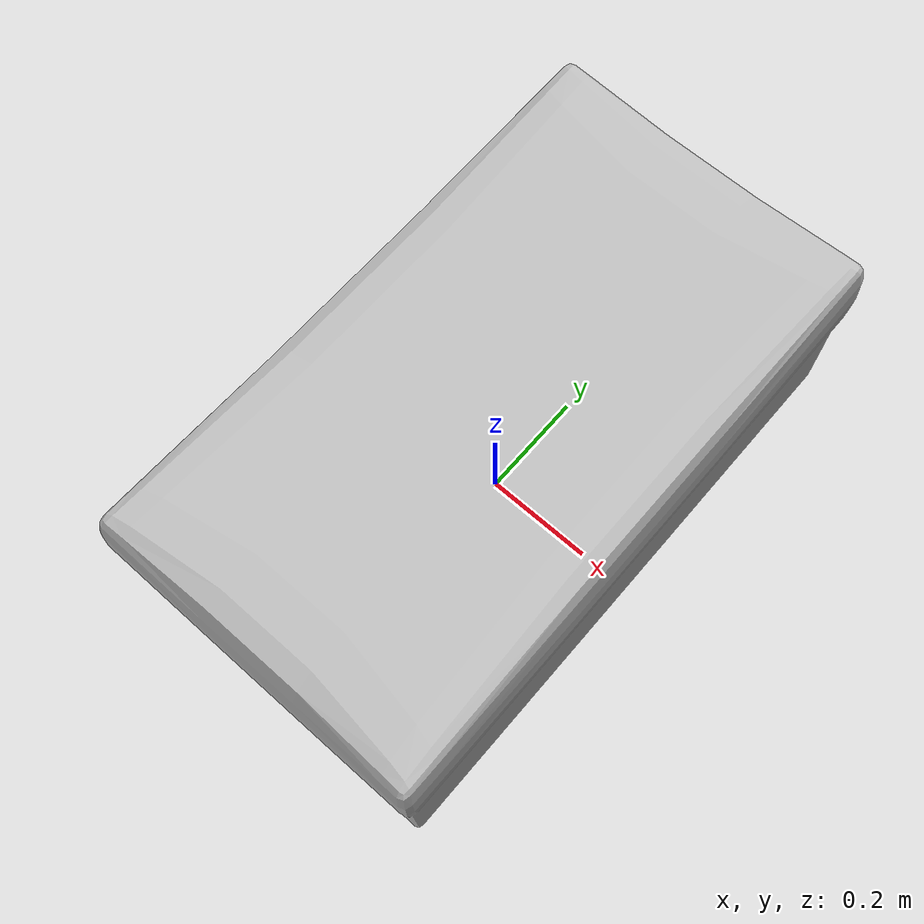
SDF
<?xml version='1.0'?>
<sdf version='1.4'>
  <model name='558'>
    <pose>0 0 0 0 0 0</pose>
    <static>true</static>
    <link name='link'>
      <collision name='collision'>
        <pose>0 0 0 0 0 0</pose>
        <geometry>
          <box>
            <size>0.62 1.09 2</size>
          </box>
        </geometry>
      </collision>
      <visual name='visual'>
        <pose>0 0 0 0 0 0</pose>
        <geometry>
          <mesh><uri>model://558/558.dae</uri></mesh>
        </geometry>
      </visual>
    </link>
  </model>
</sdf>
